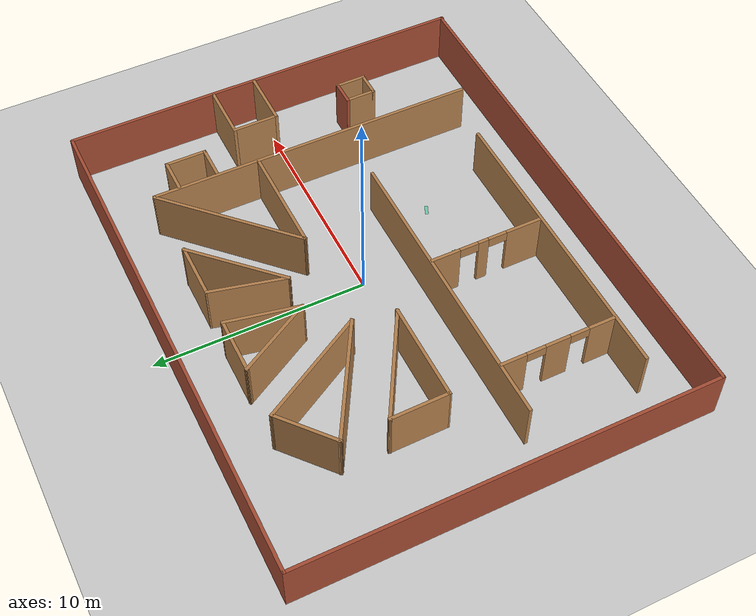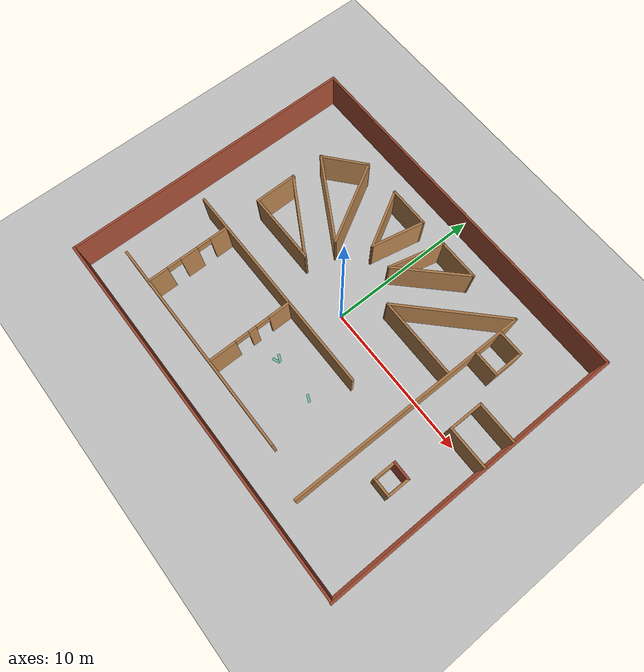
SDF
<sdf version="1.6">
 <world name="default">
  <model name="ground_plane">
   <static>1</static>
   <link name="link">
    <collision name="collision">
     <geometry><plane><normal>0 0 1</normal><size>100 100</size></plane></geometry>
     <surface><friction><ode><mu>100</mu><mu2>50</mu2></ode></friction></surface>
    </collision>
    <visual name="visual">
     <cast_shadows>0</cast_shadows>
     <geometry><plane><normal>0 0 1</normal><size>100 100</size></plane></geometry>
     <material>
      <script><uri>file://media/materials/scripts/gazebo.material</uri><name>Gazebo/Grey</name></script>
     </material>
    </visual>
   </link>
  </model>
  <model name="sc_test_scenario">
   <pose>-0.29027 -0.45151 0 0 -0 0</pose>
   <link name="Wall_101">
    <pose>-7.64296 -4.61113 0 0 0 -1.5708</pose>
    <visual name="Wall_101_Visual_0">
     <pose>-2.12348 0 1.25 0 -0 0</pose>
     <geometry><box><size>1.25304 0.15 2.5</size></box></geometry>
     <material>
      <script><uri>file://media/materials/scripts/gazebo.material</uri><name>Gazebo/Wood</name></script>
      <ambient>1 1 1 1</ambient>
     </material>
    </visual>
    <collision name="Wall_101_Collision_0">
     <geometry><box><size>1.25304 0.15 2.5</size></box></geometry>
     <pose>-2.12348 0 1.25 0 -0 0</pose>
    </collision>
    <visual name="Wall_101_Visual_1">
     <pose>-0.006889 0 1.25 0 -0 0</pose>
     <geometry><box><size>1.18014 0.15 2.5</size></box></geometry>
     <material>
      <script><uri>file://media/materials/scripts/gazebo.material</uri><name>Gazebo/Wood</name></script>
      <ambient>1 1 1 1</ambient>
     </material>
    </visual>
    <collision name="Wall_101_Collision_1">
     <geometry><box><size>1.18014 0.15 2.5</size></box></geometry>
     <pose>-0.006889 0 1.25 0 -0 0</pose>
    </collision>
    <visual name="Wall_101_Visual_2">
     <pose>2.11659 0 1.25 0 -0 0</pose>
     <geometry><box><size>1.26682 0.15 2.5</size></box></geometry>
     <material>
      <script><uri>file://media/materials/scripts/gazebo.material</uri><name>Gazebo/Wood</name></script>
      <ambient>1 1 1 1</ambient>
     </material>
    </visual>
    <collision name="Wall_101_Collision_2">
     <geometry><box><size>1.26682 0.15 2.5</size></box></geometry>
     <pose>2.11659 0 1.25 0 -0 0</pose>
    </collision>
    <visual name="Wall_101_Visual_3">
     <pose>-1.04696 0 2.25 0 -0 0</pose>
     <geometry><box><size>0.9 0.15 0.5</size></box></geometry>
     <material>
      <script><uri>file://media/materials/scripts/gazebo.material</uri><name>Gazebo/Wood</name></script>
      <ambient>1 1 1 1</ambient>
     </material>
    </visual>
    <collision name="Wall_101_Collision_3">
     <geometry><box><size>0.9 0.15 0.5</size></box></geometry>
     <pose>-1.04696 0 2.25 0 -0 0</pose>
    </collision>
    <visual name="Wall_101_Visual_4">
     <pose>1.03318 0 2.25 0 -0 0</pose>
     <geometry><box><size>0.9 0.15 0.5</size></box></geometry>
     <material>
      <script><uri>file://media/materials/scripts/gazebo.material</uri><name>Gazebo/Wood</name></script>
      <ambient>1 1 1 1</ambient>
     </material>
    </visual>
    <collision name="Wall_101_Collision_4">
     <geometry><box><size>0.9 0.15 0.5</size></box></geometry>
     <pose>1.03318 0 2.25 0 -0 0</pose>
    </collision>
   </link>
   <link name="Wall_103">
    <pose>-1.59718 -4.61113 0 0 0 -1.5708</pose>
    <visual name="Wall_103_Visual_0">
     <pose>-2.03171 0 1.25 0 -0 0</pose>
     <geometry><box><size>1.43658 0.15 2.5</size></box></geometry>
     <material>
      <script><uri>file://media/materials/scripts/gazebo.material</uri><name>Gazebo/Wood</name></script>
      <ambient>1 1 1 1</ambient>
     </material>
    </visual>
    <collision name="Wall_103_Collision_0">
     <geometry><box><size>1.43658 0.15 2.5</size></box></geometry>
     <pose>-2.03171 0 1.25 0 -0 0</pose>
    </collision>
    <visual name="Wall_103_Visual_1">
     <pose>-0.15984 0 1.25 0 -0 0</pose>
     <geometry><box><size>0.507151 0.15 2.5</size></box></geometry>
     <material>
      <script><uri>file://media/materials/scripts/gazebo.material</uri><name>Gazebo/Wood</name></script>
      <ambient>1 1 1 1</ambient>
     </material>
    </visual>
    <collision name="Wall_103_Collision_1">
     <geometry><box><size>0.507151 0.15 2.5</size></box></geometry>
     <pose>-0.15984 0 1.25 0 -0 0</pose>
    </collision>
    <visual name="Wall_103_Visual_2">
     <pose>1.87187 0 1.25 0 -0 0</pose>
     <geometry><box><size>1.75626 0.15 2.5</size></box></geometry>
     <material>
      <script><uri>file://media/materials/scripts/gazebo.material</uri><name>Gazebo/Wood</name></script>
      <ambient>1 1 1 1</ambient>
     </material>
    </visual>
    <collision name="Wall_103_Collision_2">
     <geometry><box><size>1.75626 0.15 2.5</size></box></geometry>
     <pose>1.87187 0 1.25 0 -0 0</pose>
    </collision>
    <visual name="Wall_103_Visual_3">
     <pose>-0.863416 0 2.25 0 -0 0</pose>
     <geometry><box><size>0.9 0.15 0.5</size></box></geometry>
     <material>
      <script><uri>file://media/materials/scripts/gazebo.material</uri><name>Gazebo/Wood</name></script>
      <ambient>1 1 1 1</ambient>
     </material>
    </visual>
    <collision name="Wall_103_Collision_3">
     <geometry><box><size>0.9 0.15 0.5</size></box></geometry>
     <pose>-0.863416 0 2.25 0 -0 0</pose>
    </collision>
    <visual name="Wall_103_Visual_4">
     <pose>0.543735 0 2.25 0 -0 0</pose>
     <geometry><box><size>0.9 0.15 0.5</size></box></geometry>
     <material>
      <script><uri>file://media/materials/scripts/gazebo.material</uri><name>Gazebo/Wood</name></script>
      <ambient>1 1 1 1</ambient>
     </material>
    </visual>
    <collision name="Wall_103_Collision_4">
     <geometry><box><size>0.9 0.15 0.5</size></box></geometry>
     <pose>0.543735 0 2.25 0 -0 0</pose>
    </collision>
   </link>
   <link name="Wall_105">
    <collision name="Wall_105_Collision">
     <geometry><box><size>1.75 0.15 2.5</size></box></geometry>
     <pose>0 0 1.25 0 -0 0</pose>
    </collision>
    <visual name="Wall_105_Visual">
     <pose>0 0 1.25 0 -0 0</pose>
     <geometry><box><size>1.75 0.15 2.5</size></box></geometry>
     <material>
      <script><uri>file://media/materials/scripts/gazebo.material</uri><name>Gazebo/Wood</name></script>
      <ambient>1 1 1 1</ambient>
     </material>
    </visual>
    <pose>7.95828 6.28458 0 0 -0 0</pose>
   </link>
   <link name="Wall_106">
    <collision name="Wall_106_Collision">
     <geometry><box><size>2 0.15 2.5</size></box></geometry>
     <pose>0 0 1.25 0 -0 0</pose>
    </collision>
    <visual name="Wall_106_Visual">
     <pose>0 0 1.25 0 -0 0</pose>
     <geometry><box><size>2 0.15 2.5</size></box></geometry>
     <material>
      <script><uri>file://media/materials/scripts/gazebo.material</uri><name>Gazebo/Wood</name></script>
      <ambient>1 1 1 1</ambient>
     </material>
    </visual>
    <pose>8.75829 5.35958 0 0 0 -1.5708</pose>
   </link>
   <link name="Wall_107">
    <collision name="Wall_107_Collision">
     <geometry><box><size>1.75 0.15 2.5</size></box></geometry>
     <pose>0 0 1.25 0 -0 0</pose>
    </collision>
    <visual name="Wall_107_Visual">
     <pose>0 0 1.25 0 -0 0</pose>
     <geometry><box><size>1.75 0.15 2.5</size></box></geometry>
     <material>
      <script><uri>file://media/materials/scripts/gazebo.material</uri><name>Gazebo/Wood</name></script>
      <ambient>1 1 1 1</ambient>
     </material>
    </visual>
    <pose>7.95828 4.43457 0 0 -0 3.14159</pose>
   </link>
   <link name="Wall_114">
    <collision name="Wall_114_Collision">
     <geometry><box><size>2.75 0.15 2.5</size></box></geometry>
     <pose>0 0 1.25 0 -0 0</pose>
    </collision>
    <visual name="Wall_114_Visual">
     <pose>0 0 1.25 0 -0 0</pose>
     <geometry><box><size>2.75 0.15 2.5</size></box></geometry>
     <material>
      <script><uri>file://media/materials/scripts/gazebo.material</uri><name>Gazebo/Wood</name></script>
      <ambient>1 1 1 1</ambient>
     </material>
    </visual>
    <pose>10.7228 2.66437 0 0 -0 3.14159</pose>
   </link>
   <link name="Wall_115">
    <collision name="Wall_115_Collision">
     <geometry><box><size>2.25 0.15 2.5</size></box></geometry>
     <pose>0 0 1.25 0 -0 0</pose>
    </collision>
    <visual name="Wall_115_Visual">
     <pose>0 0 1.25 0 -0 0</pose>
     <geometry><box><size>2.25 0.15 2.5</size></box></geometry>
     <material>
      <script><uri>file://media/materials/scripts/gazebo.material</uri><name>Gazebo/Wood</name></script>
      <ambient>1 1 1 1</ambient>
     </material>
    </visual>
    <pose>9.42281 1.61437 0 0 0 -1.5708</pose>
   </link>
   <link name="Wall_116">
    <collision name="Wall_116_Collision">
     <geometry><box><size>2.75 0.15 2.5</size></box></geometry>
     <pose>0 0 1.25 0 -0 0</pose>
    </collision>
    <visual name="Wall_116_Visual">
     <pose>0 0 1.25 0 -0 0</pose>
     <geometry><box><size>2.75 0.15 2.5</size></box></geometry>
     <material>
      <script><uri>file://media/materials/scripts/gazebo.material</uri><name>Gazebo/Wood</name></script>
      <ambient>1 1 1 1</ambient>
     </material>
    </visual>
    <pose>10.7228 0.564366 0 0 -0 0</pose>
   </link>
   <link name="Wall_124">
    <collision name="Wall_124_Collision">
     <geometry><box><size>1.25 0.15 2.5</size></box></geometry>
     <pose>0 0 1.25 0 -0 0</pose>
    </collision>
    <visual name="Wall_124_Visual">
     <pose>0 0 1.25 0 -0 0</pose>
     <geometry><box><size>1.25 0.15 2.5</size></box></geometry>
     <material>
      <script><uri>file://media/materials/scripts/gazebo.material</uri><name>Gazebo/Bricks</name></script>
      <ambient>1 1 1 1</ambient>
     </material>
    </visual>
    <pose>9.44586 -2.92352 0 0 -0 0</pose>
   </link>
   <link name="Wall_125">
    <collision name="Wall_125_Collision">
     <geometry><box><size>1.5 0.15 2.5</size></box></geometry>
     <pose>0 0 1.25 0 -0 0</pose>
    </collision>
    <visual name="Wall_125_Visual">
     <pose>0 0 1.25 0 -0 0</pose>
     <geometry><box><size>1.5 0.15 2.5</size></box></geometry>
     <material>
      <script><uri>file://media/materials/scripts/gazebo.material</uri><name>Gazebo/Wood</name></script>
      <ambient>1 1 1 1</ambient>
     </material>
    </visual>
    <pose>9.99586 -3.59852 0 0 0 -1.5708</pose>
   </link>
   <link name="Wall_126">
    <collision name="Wall_126_Collision">
     <geometry><box><size>1.25 0.15 2.5</size></box></geometry>
     <pose>0 0 1.25 0 -0 0</pose>
    </collision>
    <visual name="Wall_126_Visual">
     <pose>0 0 1.25 0 -0 0</pose>
     <geometry><box><size>1.25 0.15 2.5</size></box></geometry>
     <material>
      <script><uri>file://media/materials/scripts/gazebo.material</uri><name>Gazebo/Wood</name></script>
      <ambient>1 1 1 1</ambient>
     </material>
    </visual>
    <pose>9.44586 -4.27352 0 0 -0 3.14159</pose>
   </link>
   <link name="Wall_128">
    <collision name="Wall_128_Collision">
     <geometry><box><size>1.5 0.15 2.5</size></box></geometry>
     <pose>0 0 1.25 0 -0 0</pose>
    </collision>
    <visual name="Wall_128_Visual">
     <pose>0 0 1.25 0 -0 0</pose>
     <geometry><box><size>1.5 0.15 2.5</size></box></geometry>
     <material>
      <script><uri>file://media/materials/scripts/gazebo.material</uri><name>Gazebo/Wood</name></script>
      <ambient>1 1 1 1</ambient>
     </material>
    </visual>
    <pose>8.89586 -3.59852 0 0 0 -1.5708</pose>
   </link>
   <link name="Wall_23">
    <collision name="Wall_23_Collision">
     <geometry><box><size>24.3217 0.15 2.5</size></box></geometry>
     <pose>0 0 1.25 0 -0 0</pose>
    </collision>
    <visual name="Wall_23_Visual">
     <pose>0 0 1.25 0 -0 0</pose>
     <geometry><box><size>24.3217 0.15 2.5</size></box></geometry>
     <material>
      <script><uri>file://media/materials/scripts/gazebo.material</uri><name>Gazebo/Bricks</name></script>
      <ambient>1 1 1 1</ambient>
     </material>
    </visual>
    <pose>-0.017586 9.69259 0 0 0 -0.000108</pose>
   </link>
   <link name="Wall_24">
    <collision name="Wall_24_Collision">
     <geometry><box><size>19.5 0.15 2.5</size></box></geometry>
     <pose>0 0 1.25 0 -0 0</pose>
    </collision>
    <visual name="Wall_24_Visual">
     <pose>0 0 1.25 0 -0 0</pose>
     <geometry><box><size>19.5 0.15 2.5</size></box></geometry>
     <material>
      <script><uri>file://media/materials/scripts/gazebo.material</uri><name>Gazebo/Bricks</name></script>
      <ambient>1 1 1 1</ambient>
     </material>
    </visual>
    <pose>12.1035 -0.018893 0 0 0 -1.5708</pose>
   </link>
   <link name="Wall_25">
    <collision name="Wall_25_Collision">
     <geometry><box><size>24.3217 0.15 2.5</size></box></geometry>
     <pose>0 0 1.25 0 -0 0</pose>
    </collision>
    <visual name="Wall_25_Visual">
     <pose>0 0 1.25 0 -0 0</pose>
     <geometry><box><size>24.3217 0.15 2.5</size></box></geometry>
     <material>
      <script><uri>file://media/materials/scripts/gazebo.material</uri><name>Gazebo/Bricks</name></script>
      <ambient>1 1 1 1</ambient>
     </material>
    </visual>
    <pose>-0.017586 -9.65741 0 0 -0 3.14148</pose>
   </link>
   <link name="Wall_26">
    <collision name="Wall_26_Collision">
     <geometry><box><size>19.5 0.15 2.5</size></box></geometry>
     <pose>0 0 1.25 0 -0 0</pose>
    </collision>
    <visual name="Wall_26_Visual">
     <pose>0 0 1.25 0 -0 0</pose>
     <geometry><box><size>19.5 0.15 2.5</size></box></geometry>
     <material>
      <script><uri>file://media/materials/scripts/gazebo.material</uri><name>Gazebo/Bricks</name></script>
      <ambient>1 1 1 1</ambient>
     </material>
    </visual>
    <pose>-12.1035 0.018886 0 0 -0 1.5708</pose>
   </link>
   <link name="Wall_29">
    <collision name="Wall_29_Collision">
     <geometry><box><size>15.75 0.15 2.5</size></box></geometry>
     <pose>0 0 1.25 0 -0 0</pose>
    </collision>
    <visual name="Wall_29_Visual">
     <pose>0 0 1.25 0 -0 0</pose>
     <geometry><box><size>15.75 0.15 2.5</size></box></geometry>
     <material>
      <script><uri>file://media/materials/scripts/gazebo.material</uri><name>Gazebo/Wood</name></script>
      <ambient>1 1 1 1</ambient>
     </material>
    </visual>
    <pose>7.14369 -0.32029 0 0 0 -1.5708</pose>
   </link>
   <link name="Wall_42">
    <collision name="Wall_42_Collision">
     <geometry><box><size>7.34172 0.15 2.5</size></box></geometry>
     <pose>0 0 1.25 0 -0 0</pose>
    </collision>
    <visual name="Wall_42_Visual">
     <pose>0 0 1.25 0 -0 0</pose>
     <geometry><box><size>7.34172 0.15 2.5</size></box></geometry>
     <material>
      <script><uri>file://media/materials/scripts/gazebo.material</uri><name>Gazebo/Wood</name></script>
      <ambient>1 1 1 1</ambient>
     </material>
    </visual>
    <pose>4.53543 4.9684 0 0 0 -2.36834</pose>
   </link>
   <link name="Wall_43">
    <collision name="Wall_43_Collision">
     <geometry><box><size>5.25 0.15 2.5</size></box></geometry>
     <pose>0 0 1.25 0 -0 0</pose>
    </collision>
    <visual name="Wall_43_Visual">
     <pose>0 0 1.25 0 -0 0</pose>
     <geometry><box><size>5.25 0.15 2.5</size></box></geometry>
     <material>
      <script><uri>file://media/materials/scripts/gazebo.material</uri><name>Gazebo/Wood</name></script>
      <ambient>1 1 1 1</ambient>
     </material>
    </visual>
    <pose>4.52386 2.44559 0 0 -0 0</pose>
   </link>
   <link name="Wall_62">
    <collision name="Wall_62_Collision">
     <geometry><box><size>5 0.15 2.5</size></box></geometry>
     <pose>0 0 1.25 0 -0 0</pose>
    </collision>
    <visual name="Wall_62_Visual">
     <pose>0 0 1.25 0 -0 0</pose>
     <geometry><box><size>5 0.15 2.5</size></box></geometry>
     <material>
      <script><uri>file://media/materials/scripts/gazebo.material</uri><name>Gazebo/Wood</name></script>
      <ambient>1 1 1 1</ambient>
     </material>
    </visual>
    <pose>1.99557 5.69381 0 0 -0 0.785398</pose>
   </link>
   <link name="Wall_63">
    <collision name="Wall_63_Collision">
     <geometry><box><size>2.75 0.15 2.5</size></box></geometry>
     <pose>0 0 1.25 0 -0 0</pose>
    </collision>
    <visual name="Wall_63_Visual">
     <pose>0 0 1.25 0 -0 0</pose>
     <geometry><box><size>2.75 0.15 2.5</size></box></geometry>
     <material>
      <script><uri>file://media/materials/scripts/gazebo.material</uri><name>Gazebo/Wood</name></script>
      <ambient>1 1 1 1</ambient>
     </material>
    </visual>
    <pose>2.41031 7.40854 0 0 -0 3.14159</pose>
   </link>
   <link name="Wall_64">
    <collision name="Wall_64_Collision">
     <geometry><box><size>3.67835 0.15 2.5</size></box></geometry>
     <pose>0 0 1.25 0 -0 0</pose>
    </collision>
    <visual name="Wall_64_Visual">
     <pose>0 0 1.25 0 -0 0</pose>
     <geometry><box><size>3.67835 0.15 2.5</size></box></geometry>
     <material>
      <script><uri>file://media/materials/scripts/gazebo.material</uri><name>Gazebo/Wood</name></script>
      <ambient>1 1 1 1</ambient>
     </material>
    </visual>
    <pose>0.695573 5.69381 0 0 0 -1.8081</pose>
   </link>
   <link name="Wall_70">
    <collision name="Wall_70_Collision">
     <geometry><box><size>3.54783 0.15 2.5</size></box></geometry>
     <pose>0 0 1.25 0 -0 0</pose>
    </collision>
    <visual name="Wall_70_Visual">
     <pose>0 0 1.25 0 -0 0</pose>
     <geometry><box><size>3.54783 0.15 2.5</size></box></geometry>
     <material>
      <script><uri>file://media/materials/scripts/gazebo.material</uri><name>Gazebo/Wood</name></script>
      <ambient>1 1 1 1</ambient>
     </material>
    </visual>
    <pose>-1.00702 5.73657 0 0 -0 1.36902</pose>
   </link>
   <link name="Wall_78">
    <collision name="Wall_78_Collision">
     <geometry><box><size>4 0.15 2.5</size></box></geometry>
     <pose>0 0 1.25 0 -0 0</pose>
    </collision>
    <visual name="Wall_78_Visual">
     <pose>0 0 1.25 0 -0 0</pose>
     <geometry><box><size>4 0.15 2.5</size></box></geometry>
     <material>
      <script><uri>file://media/materials/scripts/gazebo.material</uri><name>Gazebo/Wood</name></script>
      <ambient>1 1 1 1</ambient>
     </material>
    </visual>
    <pose>-2.31 5.73922 0 0 -0 2.0944</pose>
   </link>
   <link name="Wall_79">
    <collision name="Wall_79_Collision">
     <geometry><box><size>2.75595 0.15 2.5</size></box></geometry>
     <pose>0 0 1.25 0 -0 0</pose>
    </collision>
    <visual name="Wall_79_Visual">
     <pose>0 0 1.25 0 -0 0</pose>
     <geometry><box><size>2.75595 0.15 2.5</size></box></geometry>
     <material>
      <script><uri>file://media/materials/scripts/gazebo.material</uri><name>Gazebo/Wood</name></script>
      <ambient>1 1 1 1</ambient>
     </material>
    </visual>
    <pose>-1.96952 7.40367 0 0 0 -0.002033</pose>
   </link>
   <link name="Wall_82">
    <collision name="Wall_82_Collision">
     <geometry><box><size>5.75 0.15 2.5</size></box></geometry>
     <pose>0 0 1.25 0 -0 0</pose>
    </collision>
    <visual name="Wall_82_Visual">
     <pose>0 0 1.25 0 -0 0</pose>
     <geometry><box><size>5.75 0.15 2.5</size></box></geometry>
     <material>
      <script><uri>file://media/materials/scripts/gazebo.material</uri><name>Gazebo/Wood</name></script>
      <ambient>1 1 1 1</ambient>
     </material>
    </visual>
    <pose>-4.32931 4.9617 0 0 -0 2.0944</pose>
   </link>
   <link name="Wall_84">
    <collision name="Wall_84_Collision">
     <geometry><box><size>6 0.15 2.5</size></box></geometry>
     <pose>0 0 1.25 0 -0 0</pose>
    </collision>
    <visual name="Wall_84_Visual">
     <pose>0 0 1.25 0 -0 0</pose>
     <geometry><box><size>6 0.15 2.5</size></box></geometry>
     <material>
      <script><uri>file://media/materials/scripts/gazebo.material</uri><name>Gazebo/Wood</name></script>
      <ambient>1 1 1 1</ambient>
     </material>
    </visual>
    <pose>-5.46244 3.99933 0 0 0 -0.523599</pose>
   </link>
   <link name="Wall_87">
    <collision name="Wall_87_Collision">
     <geometry><box><size>3.1233 0.15 2.5</size></box></geometry>
     <pose>0 0 1.25 0 -0 0</pose>
    </collision>
    <visual name="Wall_87_Visual">
     <pose>0 0 1.25 0 -0 0</pose>
     <geometry><box><size>3.1233 0.15 2.5</size></box></geometry>
     <material>
      <script><uri>file://media/materials/scripts/gazebo.material</uri><name>Gazebo/Wood</name></script>
      <ambient>1 1 1 1</ambient>
     </material>
    </visual>
    <pose>-6.86243 6.4242 0 0 0 -2.4375</pose>
   </link>
   <link name="Wall_89">
    <collision name="Wall_89_Collision">
     <geometry><box><size>5.5 0.15 2.5</size></box></geometry>
     <pose>0 0 1.25 0 -0 0</pose>
    </collision>
    <visual name="Wall_89_Visual">
     <pose>0 0 1.25 0 -0 0</pose>
     <geometry><box><size>5.5 0.15 2.5</size></box></geometry>
     <material>
      <script><uri>file://media/materials/scripts/gazebo.material</uri><name>Gazebo/Wood</name></script>
      <ambient>1 1 1 1</ambient>
     </material>
    </visual>
    <pose>-5.63727 1.94371 0 0 0 -0.523599</pose>
   </link>
   <link name="Wall_90">
    <collision name="Wall_90_Collision">
     <geometry><box><size>4.75 0.15 2.5</size></box></geometry>
     <pose>0 0 1.25 0 -0 0</pose>
    </collision>
    <visual name="Wall_90_Visual">
     <pose>0 0 1.25 0 -0 0</pose>
     <geometry><box><size>4.75 0.15 2.5</size></box></geometry>
     <material>
      <script><uri>file://media/materials/scripts/gazebo.material</uri><name>Gazebo/Wood</name></script>
      <ambient>1 1 1 1</ambient>
     </material>
    </visual>
    <pose>-5.62066 0.606213 0 0 -0 3.14159</pose>
   </link>
   <link name="Wall_91">
    <collision name="Wall_91_Collision">
     <geometry><box><size>2.82521 0.15 2.5</size></box></geometry>
     <pose>0 0 1.25 0 -0 0</pose>
    </collision>
    <visual name="Wall_91_Visual">
     <pose>0 0 1.25 0 -0 0</pose>
     <geometry><box><size>2.82521 0.15 2.5</size></box></geometry>
     <material>
      <script><uri>file://media/materials/scripts/gazebo.material</uri><name>Gazebo/Wood</name></script>
      <ambient>1 1 1 1</ambient>
     </material>
    </visual>
    <pose>-7.93727 1.94371 0 0 -0 1.58322</pose>
   </link>
   <link name="Wall_94">
    <collision name="Wall_94_Collision">
     <geometry><box><size>14.25 0.15 2.5</size></box></geometry>
     <pose>0 0 1.25 0 -0 0</pose>
    </collision>
    <visual name="Wall_94_Visual">
     <pose>0 0 1.25 0 -0 0</pose>
     <geometry><box><size>14.25 0.15 2.5</size></box></geometry>
     <material>
      <script><uri>file://media/materials/scripts/gazebo.material</uri><name>Gazebo/Wood</name></script>
      <ambient>1 1 1 1</ambient>
     </material>
    </visual>
    <pose>-2.95095 -1.88294 0 0 -0 0</pose>
   </link>
   <link name="Wall_99">
    <collision name="Wall_99_Collision">
     <geometry><box><size>14.25 0.15 2.5</size></box></geometry>
     <pose>0 0 1.25 0 -0 0</pose>
    </collision>
    <visual name="Wall_99_Visual">
     <pose>0 0 1.25 0 -0 0</pose>
     <geometry><box><size>14.25 0.15 2.5</size></box></geometry>
     <material>
      <script><uri>file://media/materials/scripts/gazebo.material</uri><name>Gazebo/Wood</name></script>
      <ambient>1 1 1 1</ambient>
     </material>
    </visual>
    <pose>-2.89357 -7.39339 0 0 -0 0</pose>
   </link>
   <static>1</static>
  </model>
  <model name="path_test">
   <link name="Wall_30_clone_clone_0_clone_clone_0_clone_clone">
    <pose>2.55639 0.336606 0 0 0 -0.4</pose>
    <inertial>
     <mass>1</mass>
     <inertia><ixx>1</ixx><ixy>0</ixy><ixz>0</ixz><iyy>1</iyy><iyz>0</iyz><izz>1</izz></inertia>
    </inertial>
    <visual name="Wall_30_Visual">
     <geometry><box><size>0.5 0.15 0</size></box></geometry>
     <material>
      <script><uri>file://media/materials/scripts/gazebo.material</uri><name>Gazebo/Grey</name></script>
      <ambient>0.435 0.796 0.675 1</ambient>
      <shader type="pixel"><normal_map>__default__</normal_map></shader>
      <diffuse>0.7 0.7 0.7 1</diffuse>
      <specular>0.01 0.01 0.01 1</specular>
      <emissive>0 0 0 1</emissive>
     </material>
     <meta><layer>0</layer></meta>
    </visual>
    <collision name="Wall_30_Collision">
     <geometry><box><size>0.5 0.15 0</size></box></geometry>
     <surface>
      <friction>
       <ode><mu>1</mu><mu2>1</mu2><fdir1>0 0 0</fdir1><slip1>0</slip1><slip2>0</slip2></ode>
       <torsional>
        <coefficient>1</coefficient>
        <patch_radius>0</patch_radius>
        <surface_radius>0</surface_radius>
        <use_patch_radius>1</use_patch_radius>
        <ode><slip>0</slip></ode>
       </torsional>
      </friction>
      <bounce><restitution_coefficient>0</restitution_coefficient><threshold>1e+06</threshold></bounce>
      <contact>
       <collide_without_contact>0</collide_without_contact>
       <collide_without_contact_bitmask>1</collide_without_contact_bitmask>
       <collide_bitmask>1</collide_bitmask>
       <ode>
        <soft_cfm>0</soft_cfm>
        <soft_erp>0.2</soft_erp>
        <kp>1e+13</kp>
        <kd>1</kd>
        <max_vel>0.01</max_vel>
        <min_depth>0</min_depth>
       </ode>
       <bullet>
        <split_impulse>1</split_impulse>
        <split_impulse_penetration_threshold>-0.01</split_impulse_penetration_threshold>
        <soft_cfm>0</soft_cfm>
        <soft_erp>0.2</soft_erp>
        <kp>1e+13</kp>
        <kd>1</kd>
       </bullet>
      </contact>
     </surface>
    </collision>
   </link>
   <link name="Wall_30_clone_clone_0_clone_clone_clone_clone">
    <pose>5.51526 0.205404 0 0 0 -0.4</pose>
    <inertial>
     <mass>1</mass>
     <inertia><ixx>1</ixx><ixy>0</ixy><ixz>0</ixz><iyy>1</iyy><iyz>0</iyz><izz>1</izz></inertia>
    </inertial>
    <visual name="Wall_30_Visual">
     <geometry><box><size>0.5 0.15 0</size></box></geometry>
     <material>
      <script><uri>file://media/materials/scripts/gazebo.material</uri><name>Gazebo/Grey</name></script>
      <ambient>0.435 0.796 0.675 1</ambient>
      <shader type="pixel"><normal_map>__default__</normal_map></shader>
      <diffuse>0.7 0.7 0.7 1</diffuse>
      <specular>0.01 0.01 0.01 1</specular>
      <emissive>0 0 0 1</emissive>
     </material>
     <meta><layer>0</layer></meta>
    </visual>
    <collision name="Wall_30_Collision">
     <geometry><box><size>0.5 0.15 0</size></box></geometry>
     <surface>
      <friction>
       <ode><mu>1</mu><mu2>1</mu2><fdir1>0 0 0</fdir1><slip1>0</slip1><slip2>0</slip2></ode>
       <torsional>
        <coefficient>1</coefficient>
        <patch_radius>0</patch_radius>
        <surface_radius>0</surface_radius>
        <use_patch_radius>1</use_patch_radius>
        <ode><slip>0</slip></ode>
       </torsional>
      </friction>
      <bounce><restitution_coefficient>0</restitution_coefficient><threshold>1e+06</threshold></bounce>
      <contact>
       <collide_without_contact>0</collide_without_contact>
       <collide_without_contact_bitmask>1</collide_without_contact_bitmask>
       <collide_bitmask>1</collide_bitmask>
       <ode>
        <soft_cfm>0</soft_cfm>
        <soft_erp>0.2</soft_erp>
        <kp>1e+13</kp>
        <kd>1</kd>
        <max_vel>0.01</max_vel>
        <min_depth>0</min_depth>
       </ode>
       <bullet>
        <split_impulse>1</split_impulse>
        <split_impulse_penetration_threshold>-0.01</split_impulse_penetration_threshold>
        <soft_cfm>0</soft_cfm>
        <soft_erp>0.2</soft_erp>
        <kp>1e+13</kp>
        <kd>1</kd>
       </bullet>
      </contact>
     </surface>
    </collision>
   </link>
   <link name="Wall_30_clone_clone_clone_clone_0_clone">
    <pose>2.55934 0.108105 0 0 -0 0.4</pose>
    <inertial>
     <mass>1</mass>
     <inertia><ixx>1</ixx><ixy>0</ixy><ixz>0</ixz><iyy>1</iyy><iyz>0</iyz><izz>1</izz></inertia>
    </inertial>
    <visual name="Wall_30_Visual">
     <geometry><box><size>0.5 0.15 0</size></box></geometry>
     <material>
      <script><uri>file://media/materials/scripts/gazebo.material</uri><name>Gazebo/Grey</name></script>
      <ambient>0.435 0.796 0.675 1</ambient>
      <shader type="pixel"><normal_map>__default__</normal_map></shader>
      <diffuse>0.7 0.7 0.7 1</diffuse>
      <specular>0.01 0.01 0.01 1</specular>
      <emissive>0 0 0 1</emissive>
     </material>
     <meta><layer>0</layer></meta>
    </visual>
    <collision name="Wall_30_Collision">
     <geometry><box><size>0.5 0.15 0</size></box></geometry>
     <surface>
      <friction>
       <ode><mu>1</mu><mu2>1</mu2><fdir1>0 0 0</fdir1><slip1>0</slip1><slip2>0</slip2></ode>
       <torsional>
        <coefficient>1</coefficient>
        <patch_radius>0</patch_radius>
        <surface_radius>0</surface_radius>
        <use_patch_radius>1</use_patch_radius>
        <ode><slip>0</slip></ode>
       </torsional>
      </friction>
      <bounce><restitution_coefficient>0</restitution_coefficient><threshold>1e+06</threshold></bounce>
      <contact>
       <collide_without_contact>0</collide_without_contact>
       <collide_without_contact_bitmask>1</collide_without_contact_bitmask>
       <collide_bitmask>1</collide_bitmask>
       <ode>
        <soft_cfm>0</soft_cfm>
        <soft_erp>0.2</soft_erp>
        <kp>1e+13</kp>
        <kd>1</kd>
        <max_vel>0.01</max_vel>
        <min_depth>0</min_depth>
       </ode>
       <bullet>
        <split_impulse>1</split_impulse>
        <split_impulse_penetration_threshold>-0.01</split_impulse_penetration_threshold>
        <soft_cfm>0</soft_cfm>
        <soft_erp>0.2</soft_erp>
        <kp>1e+13</kp>
        <kd>1</kd>
       </bullet>
      </contact>
     </surface>
    </collision>
   </link>
   <static>1</static>
   <pose>-2.83262 -4.78981 0.001 0 -0 0</pose>
  </model>
 </world>
</sdf>
